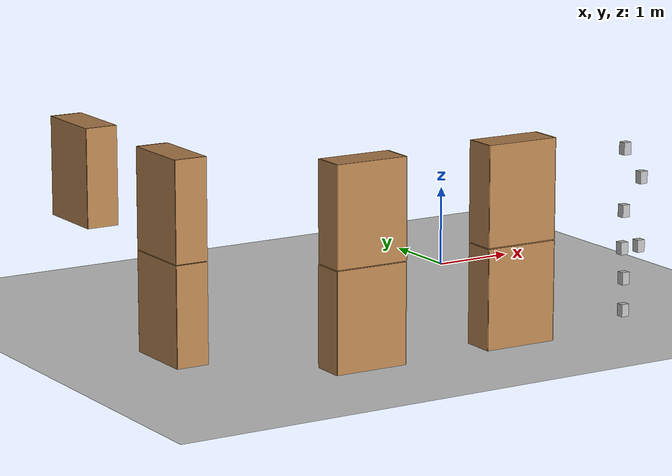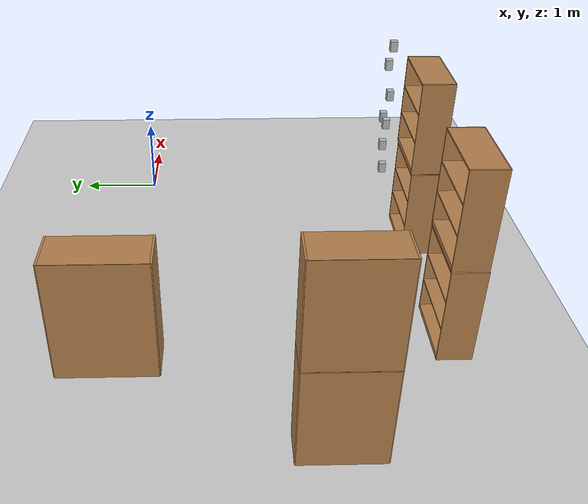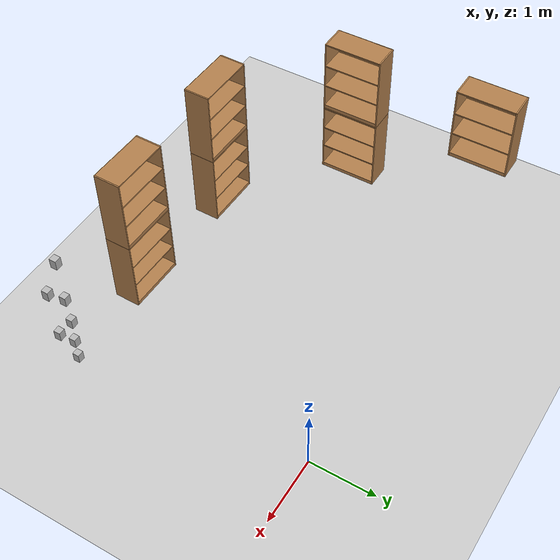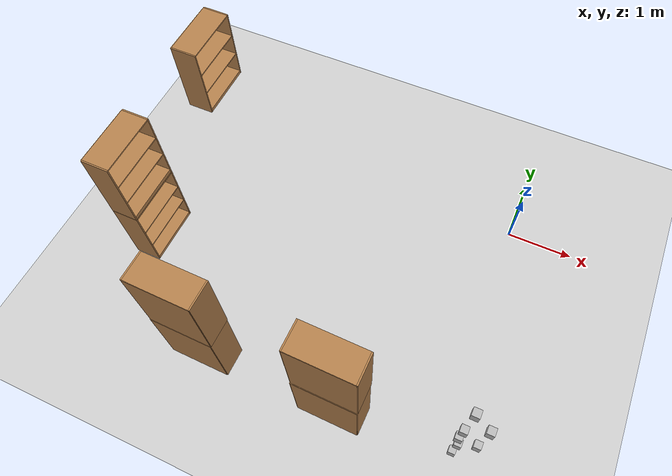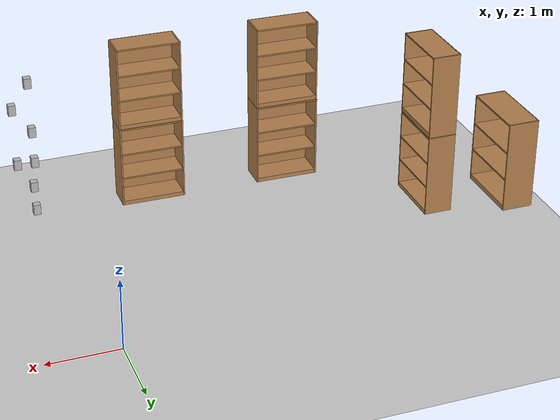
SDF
<sdf version="1.7">
 <world name="default">
  <model name="ground_plane">
   <static>1</static>
   <link name="link">
    <collision name="collision">
     <geometry><plane><normal>0 0 1</normal><size>100 100</size></plane></geometry>
     <surface><friction><ode><mu>100</mu><mu2>50</mu2></ode></friction></surface>
    </collision>
    <visual name="visual">
     <cast_shadows>0</cast_shadows>
     <geometry><plane><normal>0 0 1</normal><size>100 100</size></plane></geometry>
     <material>
      <script><uri>file://media/materials/scripts/gazebo.material</uri><name>Gazebo/Grey</name></script>
     </material>
    </visual>
   </link>
  </model>
  <model name="bookshelf_5_clone_2">
   <static>1</static>
   <link name="link">
    <inertial><mass>1</mass></inertial>
    <collision name="back">
     <pose>0 0.005 0.6 0 -0 0</pose>
     <geometry><box><size>0.9 0.01 1.2</size></box></geometry>
    </collision>
    <visual name="visual1">
     <pose>0 0.005 0.6 0 -0 0</pose>
     <geometry><box><size>0.9 0.01 1.2</size></box></geometry>
     <material>
      <script><uri>file://media/materials/scripts/gazebo.material</uri><name>Gazebo/Wood</name></script>
     </material>
    </visual>
    <collision name="left_side">
     <pose>0.45 -0.195 0.6 0 -0 0</pose>
     <geometry><box><size>0.02 0.4 1.2</size></box></geometry>
    </collision>
    <visual name="visual2">
     <pose>0.45 -0.195 0.6 0 -0 0</pose>
     <geometry><box><size>0.02 0.4 1.2</size></box></geometry>
     <material>
      <script><uri>file://media/materials/scripts/gazebo.material</uri><name>Gazebo/Wood</name></script>
     </material>
    </visual>
    <collision name="right_side">
     <pose>-0.45 -0.195 0.6 0 -0 0</pose>
     <geometry><box><size>0.02 0.4 1.2</size></box></geometry>
    </collision>
    <visual name="visual3">
     <pose>-0.45 -0.195 0.6 0 -0 0</pose>
     <geometry><box><size>0.02 0.4 1.2</size></box></geometry>
     <material>
      <script><uri>file://media/materials/scripts/gazebo.material</uri><name>Gazebo/Wood</name></script>
     </material>
    </visual>
    <collision name="bottom">
     <pose>0 -0.195 0.03 0 -0 0</pose>
     <geometry><box><size>0.88 0.4 0.06</size></box></geometry>
    </collision>
    <visual name="visual4">
     <pose>0 -0.195 0.03 0 -0 0</pose>
     <geometry><box><size>0.88 0.4 0.06</size></box></geometry>
     <material>
      <script><uri>file://media/materials/scripts/gazebo.material</uri><name>Gazebo/Wood</name></script>
     </material>
    </visual>
    <collision name="top">
     <pose>0 -0.195 1.19 0 -0 0</pose>
     <geometry><box><size>0.88 0.4 0.02</size></box></geometry>
    </collision>
    <visual name="visual5">
     <pose>0 -0.195 1.19 0 -0 0</pose>
     <geometry><box><size>0.88 0.4 0.02</size></box></geometry>
     <material>
      <script><uri>file://media/materials/scripts/gazebo.material</uri><name>Gazebo/Wood</name></script>
     </material>
    </visual>
    <collision name="low_shelf">
     <pose>0 -0.195 0.43 0 -0 0</pose>
     <geometry><box><size>0.88 0.4 0.02</size></box></geometry>
    </collision>
    <visual name="visual6">
     <pose>0 -0.195 0.43 0 -0 0</pose>
     <geometry><box><size>0.88 0.4 0.02</size></box></geometry>
     <material>
      <script><uri>file://media/materials/scripts/gazebo.material</uri><name>Gazebo/Wood</name></script>
     </material>
    </visual>
    <collision name="high_shelf">
     <pose>0 -0.195 0.8 0 -0 0</pose>
     <geometry><box><size>0.88 0.4 0.02</size></box></geometry>
    </collision>
    <visual name="visual7">
     <pose>0 -0.195 0.8 0 -0 0</pose>
     <geometry><box><size>0.88 0.4 0.02</size></box></geometry>
     <material>
      <script><uri>file://media/materials/scripts/gazebo.material</uri><name>Gazebo/Wood</name></script>
     </material>
    </visual>
   </link>
   <pose>-1.42311 -3.81825 0 0 -0 3.12955</pose>
  </model>
  <model name="bookshelf_5_clone_5">
   <static>1</static>
   <link name="link">
    <inertial><mass>1</mass></inertial>
    <collision name="back">
     <pose>0 0.005 0.6 0 -0 0</pose>
     <geometry><box><size>0.9 0.01 1.2</size></box></geometry>
    </collision>
    <visual name="visual1">
     <pose>0 0.005 0.6 0 -0 0</pose>
     <geometry><box><size>0.9 0.01 1.2</size></box></geometry>
     <material>
      <script><uri>file://media/materials/scripts/gazebo.material</uri><name>Gazebo/Wood</name></script>
     </material>
    </visual>
    <collision name="left_side">
     <pose>0.45 -0.195 0.6 0 -0 0</pose>
     <geometry><box><size>0.02 0.4 1.2</size></box></geometry>
    </collision>
    <visual name="visual2">
     <pose>0.45 -0.195 0.6 0 -0 0</pose>
     <geometry><box><size>0.02 0.4 1.2</size></box></geometry>
     <material>
      <script><uri>file://media/materials/scripts/gazebo.material</uri><name>Gazebo/Wood</name></script>
     </material>
    </visual>
    <collision name="right_side">
     <pose>-0.45 -0.195 0.6 0 -0 0</pose>
     <geometry><box><size>0.02 0.4 1.2</size></box></geometry>
    </collision>
    <visual name="visual3">
     <pose>-0.45 -0.195 0.6 0 -0 0</pose>
     <geometry><box><size>0.02 0.4 1.2</size></box></geometry>
     <material>
      <script><uri>file://media/materials/scripts/gazebo.material</uri><name>Gazebo/Wood</name></script>
     </material>
    </visual>
    <collision name="bottom">
     <pose>0 -0.195 0.03 0 -0 0</pose>
     <geometry><box><size>0.88 0.4 0.06</size></box></geometry>
    </collision>
    <visual name="visual4">
     <pose>0 -0.195 0.03 0 -0 0</pose>
     <geometry><box><size>0.88 0.4 0.06</size></box></geometry>
     <material>
      <script><uri>file://media/materials/scripts/gazebo.material</uri><name>Gazebo/Wood</name></script>
     </material>
    </visual>
    <collision name="top">
     <pose>0 -0.195 1.19 0 -0 0</pose>
     <geometry><box><size>0.88 0.4 0.02</size></box></geometry>
    </collision>
    <visual name="visual5">
     <pose>0 -0.195 1.19 0 -0 0</pose>
     <geometry><box><size>0.88 0.4 0.02</size></box></geometry>
     <material>
      <script><uri>file://media/materials/scripts/gazebo.material</uri><name>Gazebo/Wood</name></script>
     </material>
    </visual>
    <collision name="low_shelf">
     <pose>0 -0.195 0.43 0 -0 0</pose>
     <geometry><box><size>0.88 0.4 0.02</size></box></geometry>
    </collision>
    <visual name="visual6">
     <pose>0 -0.195 0.43 0 -0 0</pose>
     <geometry><box><size>0.88 0.4 0.02</size></box></geometry>
     <material>
      <script><uri>file://media/materials/scripts/gazebo.material</uri><name>Gazebo/Wood</name></script>
     </material>
    </visual>
    <collision name="high_shelf">
     <pose>0 -0.195 0.8 0 -0 0</pose>
     <geometry><box><size>0.88 0.4 0.02</size></box></geometry>
    </collision>
    <visual name="visual7">
     <pose>0 -0.195 0.8 0 -0 0</pose>
     <geometry><box><size>0.88 0.4 0.02</size></box></geometry>
     <material>
      <script><uri>file://media/materials/scripts/gazebo.material</uri><name>Gazebo/Wood</name></script>
     </material>
    </visual>
   </link>
   <pose>-3.44979 -3.80253 0 0 -0 3.12955</pose>
  </model>
  <model name="bookshelf_5_clone_clone_0">
   <static>1</static>
   <link name="link">
    <inertial><mass>1</mass></inertial>
    <collision name="back">
     <pose>0 0.005 0.6 0 -0 0</pose>
     <geometry><box><size>0.9 0.01 1.2</size></box></geometry>
    </collision>
    <visual name="visual1">
     <pose>0 0.005 0.6 0 -0 0</pose>
     <geometry><box><size>0.9 0.01 1.2</size></box></geometry>
     <material>
      <script><uri>file://media/materials/scripts/gazebo.material</uri><name>Gazebo/Wood</name></script>
     </material>
    </visual>
    <collision name="left_side">
     <pose>0.45 -0.195 0.6 0 -0 0</pose>
     <geometry><box><size>0.02 0.4 1.2</size></box></geometry>
    </collision>
    <visual name="visual2">
     <pose>0.45 -0.195 0.6 0 -0 0</pose>
     <geometry><box><size>0.02 0.4 1.2</size></box></geometry>
     <material>
      <script><uri>file://media/materials/scripts/gazebo.material</uri><name>Gazebo/Wood</name></script>
     </material>
    </visual>
    <collision name="right_side">
     <pose>-0.45 -0.195 0.6 0 -0 0</pose>
     <geometry><box><size>0.02 0.4 1.2</size></box></geometry>
    </collision>
    <visual name="visual3">
     <pose>-0.45 -0.195 0.6 0 -0 0</pose>
     <geometry><box><size>0.02 0.4 1.2</size></box></geometry>
     <material>
      <script><uri>file://media/materials/scripts/gazebo.material</uri><name>Gazebo/Wood</name></script>
     </material>
    </visual>
    <collision name="bottom">
     <pose>0 -0.195 0.03 0 -0 0</pose>
     <geometry><box><size>0.88 0.4 0.06</size></box></geometry>
    </collision>
    <visual name="visual4">
     <pose>0 -0.195 0.03 0 -0 0</pose>
     <geometry><box><size>0.88 0.4 0.06</size></box></geometry>
     <material>
      <script><uri>file://media/materials/scripts/gazebo.material</uri><name>Gazebo/Wood</name></script>
     </material>
    </visual>
    <collision name="top">
     <pose>0 -0.195 1.19 0 -0 0</pose>
     <geometry><box><size>0.88 0.4 0.02</size></box></geometry>
    </collision>
    <visual name="visual5">
     <pose>0 -0.195 1.19 0 -0 0</pose>
     <geometry><box><size>0.88 0.4 0.02</size></box></geometry>
     <material>
      <script><uri>file://media/materials/scripts/gazebo.material</uri><name>Gazebo/Wood</name></script>
     </material>
    </visual>
    <collision name="low_shelf">
     <pose>0 -0.195 0.43 0 -0 0</pose>
     <geometry><box><size>0.88 0.4 0.02</size></box></geometry>
    </collision>
    <visual name="visual6">
     <pose>0 -0.195 0.43 0 -0 0</pose>
     <geometry><box><size>0.88 0.4 0.02</size></box></geometry>
     <material>
      <script><uri>file://media/materials/scripts/gazebo.material</uri><name>Gazebo/Wood</name></script>
     </material>
    </visual>
    <collision name="high_shelf">
     <pose>0 -0.195 0.8 0 -0 0</pose>
     <geometry><box><size>0.88 0.4 0.02</size></box></geometry>
    </collision>
    <visual name="visual7">
     <pose>0 -0.195 0.8 0 -0 0</pose>
     <geometry><box><size>0.88 0.4 0.02</size></box></geometry>
     <material>
      <script><uri>file://media/materials/scripts/gazebo.material</uri><name>Gazebo/Wood</name></script>
     </material>
    </visual>
   </link>
   <pose>-1.41694 -3.81004 1.21139 0 -0 3.12955</pose>
  </model>
  <model name="bookshelf_5_clone_clone_1">
   <static>1</static>
   <link name="link">
    <inertial><mass>1</mass></inertial>
    <collision name="back">
     <pose>0 0.005 0.6 0 -0 0</pose>
     <geometry><box><size>0.9 0.01 1.2</size></box></geometry>
    </collision>
    <visual name="visual1">
     <pose>0 0.005 0.6 0 -0 0</pose>
     <geometry><box><size>0.9 0.01 1.2</size></box></geometry>
     <material>
      <script><uri>file://media/materials/scripts/gazebo.material</uri><name>Gazebo/Wood</name></script>
     </material>
    </visual>
    <collision name="left_side">
     <pose>0.45 -0.195 0.6 0 -0 0</pose>
     <geometry><box><size>0.02 0.4 1.2</size></box></geometry>
    </collision>
    <visual name="visual2">
     <pose>0.45 -0.195 0.6 0 -0 0</pose>
     <geometry><box><size>0.02 0.4 1.2</size></box></geometry>
     <material>
      <script><uri>file://media/materials/scripts/gazebo.material</uri><name>Gazebo/Wood</name></script>
     </material>
    </visual>
    <collision name="right_side">
     <pose>-0.45 -0.195 0.6 0 -0 0</pose>
     <geometry><box><size>0.02 0.4 1.2</size></box></geometry>
    </collision>
    <visual name="visual3">
     <pose>-0.45 -0.195 0.6 0 -0 0</pose>
     <geometry><box><size>0.02 0.4 1.2</size></box></geometry>
     <material>
      <script><uri>file://media/materials/scripts/gazebo.material</uri><name>Gazebo/Wood</name></script>
     </material>
    </visual>
    <collision name="bottom">
     <pose>0 -0.195 0.03 0 -0 0</pose>
     <geometry><box><size>0.88 0.4 0.06</size></box></geometry>
    </collision>
    <visual name="visual4">
     <pose>0 -0.195 0.03 0 -0 0</pose>
     <geometry><box><size>0.88 0.4 0.06</size></box></geometry>
     <material>
      <script><uri>file://media/materials/scripts/gazebo.material</uri><name>Gazebo/Wood</name></script>
     </material>
    </visual>
    <collision name="top">
     <pose>0 -0.195 1.19 0 -0 0</pose>
     <geometry><box><size>0.88 0.4 0.02</size></box></geometry>
    </collision>
    <visual name="visual5">
     <pose>0 -0.195 1.19 0 -0 0</pose>
     <geometry><box><size>0.88 0.4 0.02</size></box></geometry>
     <material>
      <script><uri>file://media/materials/scripts/gazebo.material</uri><name>Gazebo/Wood</name></script>
     </material>
    </visual>
    <collision name="low_shelf">
     <pose>0 -0.195 0.43 0 -0 0</pose>
     <geometry><box><size>0.88 0.4 0.02</size></box></geometry>
    </collision>
    <visual name="visual6">
     <pose>0 -0.195 0.43 0 -0 0</pose>
     <geometry><box><size>0.88 0.4 0.02</size></box></geometry>
     <material>
      <script><uri>file://media/materials/scripts/gazebo.material</uri><name>Gazebo/Wood</name></script>
     </material>
    </visual>
    <collision name="high_shelf">
     <pose>0 -0.195 0.8 0 -0 0</pose>
     <geometry><box><size>0.88 0.4 0.02</size></box></geometry>
    </collision>
    <visual name="visual7">
     <pose>0 -0.195 0.8 0 -0 0</pose>
     <geometry><box><size>0.88 0.4 0.02</size></box></geometry>
     <material>
      <script><uri>file://media/materials/scripts/gazebo.material</uri><name>Gazebo/Wood</name></script>
     </material>
    </visual>
   </link>
   <pose>-3.44383 -3.79926 1.21139 0 -0 3.12955</pose>
  </model>
  <model name="bookshelf_0_clone_0_clone_1">
   <static>1</static>
   <link name="link">
    <inertial><mass>1</mass></inertial>
    <collision name="back">
     <pose>0 0.005 0.6 0 -0 0</pose>
     <geometry><box><size>0.9 0.01 1.2</size></box></geometry>
    </collision>
    <visual name="visual1">
     <pose>0 0.005 0.6 0 -0 0</pose>
     <geometry><box><size>0.9 0.01 1.2</size></box></geometry>
     <material>
      <script><uri>file://media/materials/scripts/gazebo.material</uri><name>Gazebo/Wood</name></script>
     </material>
    </visual>
    <collision name="left_side">
     <pose>0.45 -0.195 0.6 0 -0 0</pose>
     <geometry><box><size>0.02 0.4 1.2</size></box></geometry>
    </collision>
    <visual name="visual2">
     <pose>0.45 -0.195 0.6 0 -0 0</pose>
     <geometry><box><size>0.02 0.4 1.2</size></box></geometry>
     <material>
      <script><uri>file://media/materials/scripts/gazebo.material</uri><name>Gazebo/Wood</name></script>
     </material>
    </visual>
    <collision name="right_side">
     <pose>-0.45 -0.195 0.6 0 -0 0</pose>
     <geometry><box><size>0.02 0.4 1.2</size></box></geometry>
    </collision>
    <visual name="visual3">
     <pose>-0.45 -0.195 0.6 0 -0 0</pose>
     <geometry><box><size>0.02 0.4 1.2</size></box></geometry>
     <material>
      <script><uri>file://media/materials/scripts/gazebo.material</uri><name>Gazebo/Wood</name></script>
     </material>
    </visual>
    <collision name="bottom">
     <pose>0 -0.195 0.03 0 -0 0</pose>
     <geometry><box><size>0.88 0.4 0.06</size></box></geometry>
    </collision>
    <visual name="visual4">
     <pose>0 -0.195 0.03 0 -0 0</pose>
     <geometry><box><size>0.88 0.4 0.06</size></box></geometry>
     <material>
      <script><uri>file://media/materials/scripts/gazebo.material</uri><name>Gazebo/Wood</name></script>
     </material>
    </visual>
    <collision name="top">
     <pose>0 -0.195 1.19 0 -0 0</pose>
     <geometry><box><size>0.88 0.4 0.02</size></box></geometry>
    </collision>
    <visual name="visual5">
     <pose>0 -0.195 1.19 0 -0 0</pose>
     <geometry><box><size>0.88 0.4 0.02</size></box></geometry>
     <material>
      <script><uri>file://media/materials/scripts/gazebo.material</uri><name>Gazebo/Wood</name></script>
     </material>
    </visual>
    <collision name="low_shelf">
     <pose>0 -0.195 0.43 0 -0 0</pose>
     <geometry><box><size>0.88 0.4 0.02</size></box></geometry>
    </collision>
    <visual name="visual6">
     <pose>0 -0.195 0.43 0 -0 0</pose>
     <geometry><box><size>0.88 0.4 0.02</size></box></geometry>
     <material>
      <script><uri>file://media/materials/scripts/gazebo.material</uri><name>Gazebo/Wood</name></script>
     </material>
    </visual>
    <collision name="high_shelf">
     <pose>0 -0.195 0.8 0 -0 0</pose>
     <geometry><box><size>0.88 0.4 0.02</size></box></geometry>
    </collision>
    <visual name="visual7">
     <pose>0 -0.195 0.8 0 -0 0</pose>
     <geometry><box><size>0.88 0.4 0.02</size></box></geometry>
     <material>
      <script><uri>file://media/materials/scripts/gazebo.material</uri><name>Gazebo/Wood</name></script>
     </material>
    </visual>
   </link>
   <pose>-5.28921 -2.17241 0 0 -0 1.5697</pose>
  </model>
  <model name="bookshelf_0_clone_0_clone_1_clone_0_clone">
   <static>1</static>
   <link name="link">
    <inertial><mass>1</mass></inertial>
    <collision name="back">
     <pose>0 0.005 0.6 0 -0 0</pose>
     <geometry><box><size>0.9 0.01 1.2</size></box></geometry>
    </collision>
    <visual name="visual1">
     <pose>0 0.005 0.6 0 -0 0</pose>
     <geometry><box><size>0.9 0.01 1.2</size></box></geometry>
     <material>
      <script><uri>file://media/materials/scripts/gazebo.material</uri><name>Gazebo/Wood</name></script>
     </material>
    </visual>
    <collision name="left_side">
     <pose>0.45 -0.195 0.6 0 -0 0</pose>
     <geometry><box><size>0.02 0.4 1.2</size></box></geometry>
    </collision>
    <visual name="visual2">
     <pose>0.45 -0.195 0.6 0 -0 0</pose>
     <geometry><box><size>0.02 0.4 1.2</size></box></geometry>
     <material>
      <script><uri>file://media/materials/scripts/gazebo.material</uri><name>Gazebo/Wood</name></script>
     </material>
    </visual>
    <collision name="right_side">
     <pose>-0.45 -0.195 0.6 0 -0 0</pose>
     <geometry><box><size>0.02 0.4 1.2</size></box></geometry>
    </collision>
    <visual name="visual3">
     <pose>-0.45 -0.195 0.6 0 -0 0</pose>
     <geometry><box><size>0.02 0.4 1.2</size></box></geometry>
     <material>
      <script><uri>file://media/materials/scripts/gazebo.material</uri><name>Gazebo/Wood</name></script>
     </material>
    </visual>
    <collision name="bottom">
     <pose>0 -0.195 0.03 0 -0 0</pose>
     <geometry><box><size>0.88 0.4 0.06</size></box></geometry>
    </collision>
    <visual name="visual4">
     <pose>0 -0.195 0.03 0 -0 0</pose>
     <geometry><box><size>0.88 0.4 0.06</size></box></geometry>
     <material>
      <script><uri>file://media/materials/scripts/gazebo.material</uri><name>Gazebo/Wood</name></script>
     </material>
    </visual>
    <collision name="top">
     <pose>0 -0.195 1.19 0 -0 0</pose>
     <geometry><box><size>0.88 0.4 0.02</size></box></geometry>
    </collision>
    <visual name="visual5">
     <pose>0 -0.195 1.19 0 -0 0</pose>
     <geometry><box><size>0.88 0.4 0.02</size></box></geometry>
     <material>
      <script><uri>file://media/materials/scripts/gazebo.material</uri><name>Gazebo/Wood</name></script>
     </material>
    </visual>
    <collision name="low_shelf">
     <pose>0 -0.195 0.43 0 -0 0</pose>
     <geometry><box><size>0.88 0.4 0.02</size></box></geometry>
    </collision>
    <visual name="visual6">
     <pose>0 -0.195 0.43 0 -0 0</pose>
     <geometry><box><size>0.88 0.4 0.02</size></box></geometry>
     <material>
      <script><uri>file://media/materials/scripts/gazebo.material</uri><name>Gazebo/Wood</name></script>
     </material>
    </visual>
    <collision name="high_shelf">
     <pose>0 -0.195 0.8 0 -0 0</pose>
     <geometry><box><size>0.88 0.4 0.02</size></box></geometry>
    </collision>
    <visual name="visual7">
     <pose>0 -0.195 0.8 0 -0 0</pose>
     <geometry><box><size>0.88 0.4 0.02</size></box></geometry>
     <material>
      <script><uri>file://media/materials/scripts/gazebo.material</uri><name>Gazebo/Wood</name></script>
     </material>
    </visual>
   </link>
   <pose>-5.30537 -0.057137 1.21067 0 -0 1.5697</pose>
  </model>
  <model name="bookshelf_0_clone_0_clone_1_clone_0_clone_0">
   <static>1</static>
   <link name="link">
    <inertial><mass>1</mass></inertial>
    <collision name="back">
     <pose>0 0.005 0.6 0 -0 0</pose>
     <geometry><box><size>0.9 0.01 1.2</size></box></geometry>
    </collision>
    <visual name="visual1">
     <pose>0 0.005 0.6 0 -0 0</pose>
     <geometry><box><size>0.9 0.01 1.2</size></box></geometry>
     <material>
      <script><uri>file://media/materials/scripts/gazebo.material</uri><name>Gazebo/Wood</name></script>
     </material>
    </visual>
    <collision name="left_side">
     <pose>0.45 -0.195 0.6 0 -0 0</pose>
     <geometry><box><size>0.02 0.4 1.2</size></box></geometry>
    </collision>
    <visual name="visual2">
     <pose>0.45 -0.195 0.6 0 -0 0</pose>
     <geometry><box><size>0.02 0.4 1.2</size></box></geometry>
     <material>
      <script><uri>file://media/materials/scripts/gazebo.material</uri><name>Gazebo/Wood</name></script>
     </material>
    </visual>
    <collision name="right_side">
     <pose>-0.45 -0.195 0.6 0 -0 0</pose>
     <geometry><box><size>0.02 0.4 1.2</size></box></geometry>
    </collision>
    <visual name="visual3">
     <pose>-0.45 -0.195 0.6 0 -0 0</pose>
     <geometry><box><size>0.02 0.4 1.2</size></box></geometry>
     <material>
      <script><uri>file://media/materials/scripts/gazebo.material</uri><name>Gazebo/Wood</name></script>
     </material>
    </visual>
    <collision name="bottom">
     <pose>0 -0.195 0.03 0 -0 0</pose>
     <geometry><box><size>0.88 0.4 0.06</size></box></geometry>
    </collision>
    <visual name="visual4">
     <pose>0 -0.195 0.03 0 -0 0</pose>
     <geometry><box><size>0.88 0.4 0.06</size></box></geometry>
     <material>
      <script><uri>file://media/materials/scripts/gazebo.material</uri><name>Gazebo/Wood</name></script>
     </material>
    </visual>
    <collision name="top">
     <pose>0 -0.195 1.19 0 -0 0</pose>
     <geometry><box><size>0.88 0.4 0.02</size></box></geometry>
    </collision>
    <visual name="visual5">
     <pose>0 -0.195 1.19 0 -0 0</pose>
     <geometry><box><size>0.88 0.4 0.02</size></box></geometry>
     <material>
      <script><uri>file://media/materials/scripts/gazebo.material</uri><name>Gazebo/Wood</name></script>
     </material>
    </visual>
    <collision name="low_shelf">
     <pose>0 -0.195 0.43 0 -0 0</pose>
     <geometry><box><size>0.88 0.4 0.02</size></box></geometry>
    </collision>
    <visual name="visual6">
     <pose>0 -0.195 0.43 0 -0 0</pose>
     <geometry><box><size>0.88 0.4 0.02</size></box></geometry>
     <material>
      <script><uri>file://media/materials/scripts/gazebo.material</uri><name>Gazebo/Wood</name></script>
     </material>
    </visual>
    <collision name="high_shelf">
     <pose>0 -0.195 0.8 0 -0 0</pose>
     <geometry><box><size>0.88 0.4 0.02</size></box></geometry>
    </collision>
    <visual name="visual7">
     <pose>0 -0.195 0.8 0 -0 0</pose>
     <geometry><box><size>0.88 0.4 0.02</size></box></geometry>
     <material>
      <script><uri>file://media/materials/scripts/gazebo.material</uri><name>Gazebo/Wood</name></script>
     </material>
    </visual>
   </link>
   <pose>-5.28921 -2.17241 1.21067 0 -0 1.5697</pose>
  </model>
  <model name="tea_box_clone_1_clone_1">
   <link name="link">
    <pose>0 0 0.075 0 -0 0</pose>
    <visual name="visual">
     <geometry><box><size>0.1 0.1 0.15</size></box></geometry>
     <material>
      <script>
       <uri>model://tea_box/materials/scripts</uri>
       <uri>model://tea_box/materials/textures</uri>
       <name>tea_pat</name>
      </script>
     </material>
    </visual>
    <collision name="collision"><geometry><box><size>0.1 0.1 0.15</size></box></geometry></collision>
   </link>
   <static>1</static>
   <pose>0.268111 -3.52884 0.061312 0 -0 1.56458</pose>
  </model>
  <model name="tea_box_clone_clone_clone_clone_1_clone_1">
   <link name="link">
    <pose>0 0 0.075 0 -0 0</pose>
    <visual name="visual">
     <geometry><box><size>0.1 0.1 0.15</size></box></geometry>
     <material>
      <script>
       <uri>model://tea_box/materials/scripts</uri>
       <uri>model://tea_box/materials/textures</uri>
       <name>tea_pat</name>
      </script>
     </material>
    </visual>
    <collision name="collision"><geometry><box><size>0.1 0.1 0.15</size></box></geometry></collision>
   </link>
   <static>1</static>
   <pose>0.286966 -3.50157 0.44421 0 -0 1.56458</pose>
  </model>
  <model name="tea_box_clone_clone_clone_clone_clone_clone_1_clone_1">
   <link name="link">
    <pose>0 0 0.075 0 -0 0</pose>
    <visual name="visual">
     <geometry><box><size>0.1 0.1 0.15</size></box></geometry>
     <material>
      <script>
       <uri>model://tea_box/materials/scripts</uri>
       <uri>model://tea_box/materials/textures</uri>
       <name>tea_pat</name>
      </script>
     </material>
    </visual>
    <collision name="collision"><geometry><box><size>0.1 0.1 0.15</size></box></geometry></collision>
   </link>
   <static>1</static>
   <pose>0.490744 -3.51598 0.818791 0 -0 1.56458</pose>
  </model>
  <model name="tea_box_clone_clone_clone_clone_clone_clone_1_clone_2">
   <link name="link">
    <pose>0 0 0.075 0 -0 0</pose>
    <visual name="visual">
     <geometry><box><size>0.1 0.1 0.15</size></box></geometry>
     <material>
      <script>
       <uri>model://tea_box/materials/scripts</uri>
       <uri>model://tea_box/materials/textures</uri>
       <name>tea_pat</name>
      </script>
     </material>
    </visual>
    <collision name="collision"><geometry><box><size>0.1 0.1 0.15</size></box></geometry></collision>
   </link>
   <static>1</static>
   <pose>0.250646 -3.51141 0.818791 0 -0 1.56458</pose>
  </model>
  <model name="tea_box_clone_clone_clone_clone_clone_0_clone_1_clone_0">
   <link name="link">
    <pose>0 0 0.075 0 -0 0</pose>
    <visual name="visual">
     <geometry><box><size>0.1 0.1 0.15</size></box></geometry>
     <material>
      <script>
       <uri>model://tea_box/materials/scripts</uri>
       <uri>model://tea_box/materials/textures</uri>
       <name>tea_pat</name>
      </script>
     </material>
    </visual>
    <collision name="collision"><geometry><box><size>0.1 0.1 0.15</size></box></geometry></collision>
   </link>
   <static>1</static>
   <pose>0.253638 -3.52768 1.27537 0 -0 1.56458</pose>
  </model>
  <model name="tea_box_clone_clone_clone_clone_clone_1_clone_1_clone_0">
   <link name="link">
    <pose>0 0 0.075 0 -0 0</pose>
    <visual name="visual">
     <geometry><box><size>0.1 0.1 0.15</size></box></geometry>
     <material>
      <script>
       <uri>model://tea_box/materials/scripts</uri>
       <uri>model://tea_box/materials/textures</uri>
       <name>tea_pat</name>
      </script>
     </material>
    </visual>
    <collision name="collision"><geometry><box><size>0.1 0.1 0.15</size></box></geometry></collision>
   </link>
   <static>1</static>
   <pose>0.507255 -3.5221 1.65259 0 -0 1.56458</pose>
  </model>
  <model name="tea_box_clone_clone_clone_clone_clone_2_clone_1_clone">
   <link name="link">
    <pose>0 0 0.075 0 -0 0</pose>
    <visual name="visual">
     <geometry><box><size>0.1 0.1 0.15</size></box></geometry>
     <material>
      <script>
       <uri>model://tea_box/materials/scripts</uri>
       <uri>model://tea_box/materials/textures</uri>
       <name>tea_pat</name>
      </script>
     </material>
    </visual>
    <collision name="collision"><geometry><box><size>0.1 0.1 0.15</size></box></geometry></collision>
   </link>
   <static>1</static>
   <pose>0.269475 -3.50976 2.02413 0 -0 1.56458</pose>
  </model>
 </world>
</sdf>
